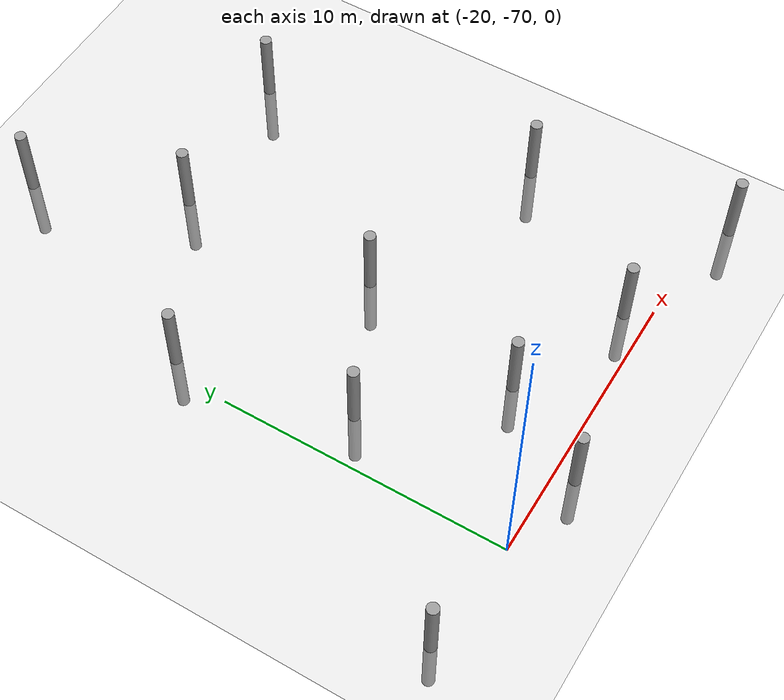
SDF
<sdf version="1.6">
 <world name="default">
  <model name="ground_plane">
   <static>1</static>
   <link name="link">
    <collision name="collision">
     <geometry><plane><normal>0 0 1</normal><size>100 100</size></plane></geometry>
     <surface><friction><ode><mu>100</mu><mu2>50</mu2></ode></friction></surface>
    </collision>
    <visual name="visual">
     <cast_shadows>0</cast_shadows>
     <geometry><plane><normal>0 0 1</normal><size>100 100</size></plane></geometry>
     <material>
      <script><uri>file://media/materials/scripts/gazebo.material</uri><name>Gazebo/Grey</name></script>
     </material>
    </visual>
   </link>
  </model>
  <model name="empty_pillars_12">
   <link name="link">
    <inertial>
     <mass>1</mass>
     <inertia><ixx>0.145833</ixx><ixy>0</ixy><ixz>0</ixz><iyy>0.145833</iyy><iyz>0</iyz><izz>0.125</izz></inertia>
    </inertial>
    <visual name="visual">
     <geometry><cylinder><radius>0.2</radius><length>5</length></cylinder></geometry>
     <material>
      <script><name>Gazebo/Grey</name><uri>file://media/materials/scripts/gazebo.material</uri></script>
      <shader type="vertex"><normal_map>__default__</normal_map></shader>
      <ambient>0.3 0.3 0.3 1</ambient>
      <diffuse>0.7 0.7 0.7 1</diffuse>
      <specular>0.01 0.01 0.01 1</specular>
      <emissive>0 0 0 1</emissive>
     </material>
    </visual>
    <collision name="collision">
     <geometry><cylinder><radius>0.05</radius><length>5</length></cylinder></geometry>
     <surface>
      <friction>
       <ode><mu>1</mu><mu2>1</mu2><fdir1>0 0 0</fdir1><slip1>0</slip1><slip2>0</slip2></ode>
       <torsional>
        <coefficient>1</coefficient>
        <patch_radius>0</patch_radius>
        <surface_radius>0</surface_radius>
        <use_patch_radius>1</use_patch_radius>
        <ode><slip>0</slip></ode>
       </torsional>
      </friction>
      <bounce><restitution_coefficient>0</restitution_coefficient><threshold>1e+06</threshold></bounce>
      <contact>
       <collide_without_contact>0</collide_without_contact>
       <collide_without_contact_bitmask>1</collide_without_contact_bitmask>
       <collide_bitmask>1</collide_bitmask>
       <ode>
        <soft_cfm>0</soft_cfm>
        <soft_erp>0.2</soft_erp>
        <kp>1e+13</kp>
        <kd>1</kd>
        <max_vel>0.01</max_vel>
        <min_depth>0</min_depth>
       </ode>
       <bullet>
        <split_impulse>1</split_impulse>
        <split_impulse_penetration_threshold>-0.01</split_impulse_penetration_threshold>
        <soft_cfm>0</soft_cfm>
        <soft_erp>0.2</soft_erp>
        <kp>1e+13</kp>
        <kd>1</kd>
       </bullet>
      </contact>
     </surface>
    </collision>
   </link>
   <model name="empty_pillar_clone_1">
    <link name="link">
     <inertial>
      <mass>1</mass>
      <inertia><ixx>0.145833</ixx><ixy>0</ixy><ixz>0</ixz><iyy>0.145833</iyy><iyz>0</iyz><izz>0.125</izz></inertia>
     </inertial>
     <visual name="visual">
      <geometry><cylinder><radius>0.2</radius><length>5</length></cylinder></geometry>
      <material>
       <script><name>Gazebo/Grey</name><uri>file://media/materials/scripts/gazebo.material</uri></script>
       <shader type="vertex"><normal_map>__default__</normal_map></shader>
       <ambient>0.3 0.3 0.3 1</ambient>
       <diffuse>0.7 0.7 0.7 1</diffuse>
       <specular>0.01 0.01 0.01 1</specular>
       <emissive>0 0 0 1</emissive>
      </material>
     </visual>
     <collision name="collision">
      <geometry><cylinder><radius>0.05</radius><length>5</length></cylinder></geometry>
      <surface>
       <friction>
        <ode><mu>1</mu><mu2>1</mu2><fdir1>0 0 0</fdir1><slip1>0</slip1><slip2>0</slip2></ode>
        <torsional>
         <coefficient>1</coefficient>
         <patch_radius>0</patch_radius>
         <surface_radius>0</surface_radius>
         <use_patch_radius>1</use_patch_radius>
         <ode><slip>0</slip></ode>
        </torsional>
       </friction>
       <bounce><restitution_coefficient>0</restitution_coefficient><threshold>1e+06</threshold></bounce>
       <contact>
        <collide_without_contact>0</collide_without_contact>
        <collide_without_contact_bitmask>1</collide_without_contact_bitmask>
        <collide_bitmask>1</collide_bitmask>
        <ode>
         <soft_cfm>0</soft_cfm>
         <soft_erp>0.2</soft_erp>
         <kp>1e+13</kp>
         <kd>1</kd>
         <max_vel>0.01</max_vel>
         <min_depth>0</min_depth>
        </ode>
        <bullet>
         <split_impulse>1</split_impulse>
         <split_impulse_penetration_threshold>-0.01</split_impulse_penetration_threshold>
         <soft_cfm>0</soft_cfm>
         <soft_erp>0.2</soft_erp>
         <kp>1e+13</kp>
         <kd>1</kd>
        </bullet>
       </contact>
      </surface>
     </collision>
    </link>
    <static>0</static>
    <pose>8.92248 2.14838 0 0 -0 0</pose>
   </model>
   <model name="empty_pillar_clone_2">
    <link name="link">
     <inertial>
      <mass>1</mass>
      <inertia><ixx>0.145833</ixx><ixy>0</ixy><ixz>0</ixz><iyy>0.145833</iyy><iyz>0</iyz><izz>0.125</izz></inertia>
     </inertial>
     <visual name="visual">
      <geometry><cylinder><radius>0.2</radius><length>5</length></cylinder></geometry>
      <material>
       <script><name>Gazebo/Grey</name><uri>file://media/materials/scripts/gazebo.material</uri></script>
       <shader type="vertex"><normal_map>__default__</normal_map></shader>
       <ambient>0.3 0.3 0.3 1</ambient>
       <diffuse>0.7 0.7 0.7 1</diffuse>
       <specular>0.01 0.01 0.01 1</specular>
       <emissive>0 0 0 1</emissive>
      </material>
     </visual>
     <collision name="collision">
      <geometry><cylinder><radius>0.05</radius><length>5</length></cylinder></geometry>
      <surface>
       <friction>
        <ode><mu>1</mu><mu2>1</mu2><fdir1>0 0 0</fdir1><slip1>0</slip1><slip2>0</slip2></ode>
        <torsional>
         <coefficient>1</coefficient>
         <patch_radius>0</patch_radius>
         <surface_radius>0</surface_radius>
         <use_patch_radius>1</use_patch_radius>
         <ode><slip>0</slip></ode>
        </torsional>
       </friction>
       <bounce><restitution_coefficient>0</restitution_coefficient><threshold>1e+06</threshold></bounce>
       <contact>
        <collide_without_contact>0</collide_without_contact>
        <collide_without_contact_bitmask>1</collide_without_contact_bitmask>
        <collide_bitmask>1</collide_bitmask>
        <ode>
         <soft_cfm>0</soft_cfm>
         <soft_erp>0.2</soft_erp>
         <kp>1e+13</kp>
         <kd>1</kd>
         <max_vel>0.01</max_vel>
         <min_depth>0</min_depth>
        </ode>
        <bullet>
         <split_impulse>1</split_impulse>
         <split_impulse_penetration_threshold>-0.01</split_impulse_penetration_threshold>
         <soft_cfm>0</soft_cfm>
         <soft_erp>0.2</soft_erp>
         <kp>1e+13</kp>
         <kd>1</kd>
        </bullet>
       </contact>
      </surface>
     </collision>
    </link>
    <static>0</static>
    <pose>6.92427 -1.06221 0 0 -0 0</pose>
   </model>
   <model name="empty_pillar_clone_26">
    <link name="link">
     <inertial>
      <mass>1</mass>
      <inertia><ixx>0.145833</ixx><ixy>0</ixy><ixz>0</ixz><iyy>0.145833</iyy><iyz>0</iyz><izz>0.125</izz></inertia>
     </inertial>
     <visual name="visual">
      <geometry><cylinder><radius>0.2</radius><length>5</length></cylinder></geometry>
      <material>
       <script><name>Gazebo/Grey</name><uri>file://media/materials/scripts/gazebo.material</uri></script>
       <shader type="vertex"><normal_map>__default__</normal_map></shader>
       <ambient>0.3 0.3 0.3 1</ambient>
       <diffuse>0.7 0.7 0.7 1</diffuse>
       <specular>0.01 0.01 0.01 1</specular>
       <emissive>0 0 0 1</emissive>
      </material>
     </visual>
     <collision name="collision">
      <geometry><cylinder><radius>0.05</radius><length>5</length></cylinder></geometry>
      <surface>
       <friction>
        <ode><mu>1</mu><mu2>1</mu2><fdir1>0 0 0</fdir1><slip1>0</slip1><slip2>0</slip2></ode>
        <torsional>
         <coefficient>1</coefficient>
         <patch_radius>0</patch_radius>
         <surface_radius>0</surface_radius>
         <use_patch_radius>1</use_patch_radius>
         <ode><slip>0</slip></ode>
        </torsional>
       </friction>
       <bounce><restitution_coefficient>0</restitution_coefficient><threshold>1e+06</threshold></bounce>
       <contact>
        <collide_without_contact>0</collide_without_contact>
        <collide_without_contact_bitmask>1</collide_without_contact_bitmask>
        <collide_bitmask>1</collide_bitmask>
        <ode>
         <soft_cfm>0</soft_cfm>
         <soft_erp>0.2</soft_erp>
         <kp>1e+13</kp>
         <kd>1</kd>
         <max_vel>0.01</max_vel>
         <min_depth>0</min_depth>
        </ode>
        <bullet>
         <split_impulse>1</split_impulse>
         <split_impulse_penetration_threshold>-0.01</split_impulse_penetration_threshold>
         <soft_cfm>0</soft_cfm>
         <soft_erp>0.2</soft_erp>
         <kp>1e+13</kp>
         <kd>1</kd>
        </bullet>
       </contact>
      </surface>
     </collision>
    </link>
    <static>0</static>
    <pose>7.70652 20.1444 0 0 -0 0</pose>
   </model>
   <model name="empty_pillar_clone_27">
    <link name="link">
     <inertial>
      <mass>1</mass>
      <inertia><ixx>0.145833</ixx><ixy>0</ixy><ixz>0</ixz><iyy>0.145833</iyy><iyz>0</iyz><izz>0.125</izz></inertia>
     </inertial>
     <visual name="visual">
      <geometry><cylinder><radius>0.2</radius><length>5</length></cylinder></geometry>
      <material>
       <script><name>Gazebo/Grey</name><uri>file://media/materials/scripts/gazebo.material</uri></script>
       <shader type="vertex"><normal_map>__default__</normal_map></shader>
       <ambient>0.3 0.3 0.3 1</ambient>
       <diffuse>0.7 0.7 0.7 1</diffuse>
       <specular>0.01 0.01 0.01 1</specular>
       <emissive>0 0 0 1</emissive>
      </material>
     </visual>
     <collision name="collision">
      <geometry><cylinder><radius>0.05</radius><length>5</length></cylinder></geometry>
      <surface>
       <friction>
        <ode><mu>1</mu><mu2>1</mu2><fdir1>0 0 0</fdir1><slip1>0</slip1><slip2>0</slip2></ode>
        <torsional>
         <coefficient>1</coefficient>
         <patch_radius>0</patch_radius>
         <surface_radius>0</surface_radius>
         <use_patch_radius>1</use_patch_radius>
         <ode><slip>0</slip></ode>
        </torsional>
       </friction>
       <bounce><restitution_coefficient>0</restitution_coefficient><threshold>1e+06</threshold></bounce>
       <contact>
        <collide_without_contact>0</collide_without_contact>
        <collide_without_contact_bitmask>1</collide_without_contact_bitmask>
        <collide_bitmask>1</collide_bitmask>
        <ode>
         <soft_cfm>0</soft_cfm>
         <soft_erp>0.2</soft_erp>
         <kp>1e+13</kp>
         <kd>1</kd>
         <max_vel>0.01</max_vel>
         <min_depth>0</min_depth>
        </ode>
        <bullet>
         <split_impulse>1</split_impulse>
         <split_impulse_penetration_threshold>-0.01</split_impulse_penetration_threshold>
         <soft_cfm>0</soft_cfm>
         <soft_erp>0.2</soft_erp>
         <kp>1e+13</kp>
         <kd>1</kd>
        </bullet>
       </contact>
      </surface>
     </collision>
    </link>
    <static>0</static>
    <pose>4.32163 11.823 0 0 -0 0</pose>
   </model>
   <model name="empty_pillar_clone_28">
    <link name="link">
     <inertial>
      <mass>1</mass>
      <inertia><ixx>0.145833</ixx><ixy>0</ixy><ixz>0</ixz><iyy>0.145833</iyy><iyz>0</iyz><izz>0.125</izz></inertia>
     </inertial>
     <visual name="visual">
      <geometry><cylinder><radius>0.2</radius><length>5</length></cylinder></geometry>
      <material>
       <script><name>Gazebo/Grey</name><uri>file://media/materials/scripts/gazebo.material</uri></script>
       <shader type="vertex"><normal_map>__default__</normal_map></shader>
       <ambient>0.3 0.3 0.3 1</ambient>
       <diffuse>0.7 0.7 0.7 1</diffuse>
       <specular>0.01 0.01 0.01 1</specular>
       <emissive>0 0 0 1</emissive>
      </material>
     </visual>
     <collision name="collision">
      <geometry><cylinder><radius>0.05</radius><length>5</length></cylinder></geometry>
      <surface>
       <friction>
        <ode><mu>1</mu><mu2>1</mu2><fdir1>0 0 0</fdir1><slip1>0</slip1><slip2>0</slip2></ode>
        <torsional>
         <coefficient>1</coefficient>
         <patch_radius>0</patch_radius>
         <surface_radius>0</surface_radius>
         <use_patch_radius>1</use_patch_radius>
         <ode><slip>0</slip></ode>
        </torsional>
       </friction>
       <bounce><restitution_coefficient>0</restitution_coefficient><threshold>1e+06</threshold></bounce>
       <contact>
        <collide_without_contact>0</collide_without_contact>
        <collide_without_contact_bitmask>1</collide_without_contact_bitmask>
        <collide_bitmask>1</collide_bitmask>
        <ode>
         <soft_cfm>0</soft_cfm>
         <soft_erp>0.2</soft_erp>
         <kp>1e+13</kp>
         <kd>1</kd>
         <max_vel>0.01</max_vel>
         <min_depth>0</min_depth>
        </ode>
        <bullet>
         <split_impulse>1</split_impulse>
         <split_impulse_penetration_threshold>-0.01</split_impulse_penetration_threshold>
         <soft_cfm>0</soft_cfm>
         <soft_erp>0.2</soft_erp>
         <kp>1e+13</kp>
         <kd>1</kd>
        </bullet>
       </contact>
      </surface>
     </collision>
    </link>
    <static>0</static>
    <pose>15.5447 15.5867 0 0 -0 0</pose>
   </model>
   <model name="empty_pillar_clone_29">
    <link name="link">
     <inertial>
      <mass>1</mass>
      <inertia><ixx>0.145833</ixx><ixy>0</ixy><ixz>0</ixz><iyy>0.145833</iyy><iyz>0</iyz><izz>0.125</izz></inertia>
     </inertial>
     <visual name="visual">
      <geometry><cylinder><radius>0.2</radius><length>5</length></cylinder></geometry>
      <material>
       <script><name>Gazebo/Grey</name><uri>file://media/materials/scripts/gazebo.material</uri></script>
       <shader type="vertex"><normal_map>__default__</normal_map></shader>
       <ambient>0.3 0.3 0.3 1</ambient>
       <diffuse>0.7 0.7 0.7 1</diffuse>
       <specular>0.01 0.01 0.01 1</specular>
       <emissive>0 0 0 1</emissive>
      </material>
     </visual>
     <collision name="collision">
      <geometry><cylinder><radius>0.05</radius><length>5</length></cylinder></geometry>
      <surface>
       <friction>
        <ode><mu>1</mu><mu2>1</mu2><fdir1>0 0 0</fdir1><slip1>0</slip1><slip2>0</slip2></ode>
        <torsional>
         <coefficient>1</coefficient>
         <patch_radius>0</patch_radius>
         <surface_radius>0</surface_radius>
         <use_patch_radius>1</use_patch_radius>
         <ode><slip>0</slip></ode>
        </torsional>
       </friction>
       <bounce><restitution_coefficient>0</restitution_coefficient><threshold>1e+06</threshold></bounce>
       <contact>
        <collide_without_contact>0</collide_without_contact>
        <collide_without_contact_bitmask>1</collide_without_contact_bitmask>
        <collide_bitmask>1</collide_bitmask>
        <ode>
         <soft_cfm>0</soft_cfm>
         <soft_erp>0.2</soft_erp>
         <kp>1e+13</kp>
         <kd>1</kd>
         <max_vel>0.01</max_vel>
         <min_depth>0</min_depth>
        </ode>
        <bullet>
         <split_impulse>1</split_impulse>
         <split_impulse_penetration_threshold>-0.01</split_impulse_penetration_threshold>
         <soft_cfm>0</soft_cfm>
         <soft_erp>0.2</soft_erp>
         <kp>1e+13</kp>
         <kd>1</kd>
        </bullet>
       </contact>
      </surface>
     </collision>
    </link>
    <static>0</static>
    <pose>10.08 8.0876 0 0 -0 0</pose>
   </model>
   <model name="empty_pillar_clone_49">
    <link name="link">
     <inertial>
      <mass>1</mass>
      <inertia><ixx>0.145833</ixx><ixy>0</ixy><ixz>0</ixz><iyy>0.145833</iyy><iyz>0</iyz><izz>0.125</izz></inertia>
     </inertial>
     <visual name="visual">
      <geometry><cylinder><radius>0.2</radius><length>5</length></cylinder></geometry>
      <material>
       <script><name>Gazebo/Grey</name><uri>file://media/materials/scripts/gazebo.material</uri></script>
       <shader type="vertex"><normal_map>__default__</normal_map></shader>
       <ambient>0.3 0.3 0.3 1</ambient>
       <diffuse>0.7 0.7 0.7 1</diffuse>
       <specular>0.01 0.01 0.01 1</specular>
       <emissive>0 0 0 1</emissive>
      </material>
     </visual>
     <collision name="collision">
      <geometry><cylinder><radius>0.05</radius><length>5</length></cylinder></geometry>
      <surface>
       <friction>
        <ode><mu>1</mu><mu2>1</mu2><fdir1>0 0 0</fdir1><slip1>0</slip1><slip2>0</slip2></ode>
        <torsional>
         <coefficient>1</coefficient>
         <patch_radius>0</patch_radius>
         <surface_radius>0</surface_radius>
         <use_patch_radius>1</use_patch_radius>
         <ode><slip>0</slip></ode>
        </torsional>
       </friction>
       <bounce><restitution_coefficient>0</restitution_coefficient><threshold>1e+06</threshold></bounce>
       <contact>
        <collide_without_contact>0</collide_without_contact>
        <collide_without_contact_bitmask>1</collide_without_contact_bitmask>
        <collide_bitmask>1</collide_bitmask>
        <ode>
         <soft_cfm>0</soft_cfm>
         <soft_erp>0.2</soft_erp>
         <kp>1e+13</kp>
         <kd>1</kd>
         <max_vel>0.01</max_vel>
         <min_depth>0</min_depth>
        </ode>
        <bullet>
         <split_impulse>1</split_impulse>
         <split_impulse_penetration_threshold>-0.01</split_impulse_penetration_threshold>
         <soft_cfm>0</soft_cfm>
         <soft_erp>0.2</soft_erp>
         <kp>1e+13</kp>
         <kd>1</kd>
        </bullet>
       </contact>
      </surface>
     </collision>
    </link>
    <static>0</static>
    <pose>9.84768 15.1425 0 0 -0 0</pose>
   </model>
   <model name="empty_pillar_clone_55">
    <link name="link">
     <inertial>
      <mass>1</mass>
      <inertia><ixx>0.145833</ixx><ixy>0</ixy><ixz>0</ixz><iyy>0.145833</iyy><iyz>0</iyz><izz>0.125</izz></inertia>
     </inertial>
     <visual name="visual">
      <geometry><cylinder><radius>0.2</radius><length>5</length></cylinder></geometry>
      <material>
       <script><name>Gazebo/Grey</name><uri>file://media/materials/scripts/gazebo.material</uri></script>
       <shader type="vertex"><normal_map>__default__</normal_map></shader>
       <ambient>0.3 0.3 0.3 1</ambient>
       <diffuse>0.7 0.7 0.7 1</diffuse>
       <specular>0.01 0.01 0.01 1</specular>
       <emissive>0 0 0 1</emissive>
      </material>
     </visual>
     <collision name="collision">
      <geometry><cylinder><radius>0.05</radius><length>5</length></cylinder></geometry>
      <surface>
       <friction>
        <ode><mu>1</mu><mu2>1</mu2><fdir1>0 0 0</fdir1><slip1>0</slip1><slip2>0</slip2></ode>
        <torsional>
         <coefficient>1</coefficient>
         <patch_radius>0</patch_radius>
         <surface_radius>0</surface_radius>
         <use_patch_radius>1</use_patch_radius>
         <ode><slip>0</slip></ode>
        </torsional>
       </friction>
       <bounce><restitution_coefficient>0</restitution_coefficient><threshold>1e+06</threshold></bounce>
       <contact>
        <collide_without_contact>0</collide_without_contact>
        <collide_without_contact_bitmask>1</collide_without_contact_bitmask>
        <collide_bitmask>1</collide_bitmask>
        <ode>
         <soft_cfm>0</soft_cfm>
         <soft_erp>0.2</soft_erp>
         <kp>1e+13</kp>
         <kd>1</kd>
         <max_vel>0.01</max_vel>
         <min_depth>0</min_depth>
        </ode>
        <bullet>
         <split_impulse>1</split_impulse>
         <split_impulse_penetration_threshold>-0.01</split_impulse_penetration_threshold>
         <soft_cfm>0</soft_cfm>
         <soft_erp>0.2</soft_erp>
         <kp>1e+13</kp>
         <kd>1</kd>
        </bullet>
       </contact>
      </surface>
     </collision>
    </link>
    <static>0</static>
    <pose>13.2247 0.382706 0 0 -0 0</pose>
   </model>
   <model name="empty_pillar_clone_57">
    <link name="link">
     <inertial>
      <mass>1</mass>
      <inertia><ixx>0.145833</ixx><ixy>0</ixy><ixz>0</ixz><iyy>0.145833</iyy><iyz>0</iyz><izz>0.125</izz></inertia>
     </inertial>
     <visual name="visual">
      <geometry><cylinder><radius>0.2</radius><length>5</length></cylinder></geometry>
      <material>
       <script><name>Gazebo/Grey</name><uri>file://media/materials/scripts/gazebo.material</uri></script>
       <shader type="vertex"><normal_map>__default__</normal_map></shader>
       <ambient>0.3 0.3 0.3 1</ambient>
       <diffuse>0.7 0.7 0.7 1</diffuse>
       <specular>0.01 0.01 0.01 1</specular>
       <emissive>0 0 0 1</emissive>
      </material>
     </visual>
     <collision name="collision">
      <geometry><cylinder><radius>0.05</radius><length>5</length></cylinder></geometry>
      <surface>
       <friction>
        <ode><mu>1</mu><mu2>1</mu2><fdir1>0 0 0</fdir1><slip1>0</slip1><slip2>0</slip2></ode>
        <torsional>
         <coefficient>1</coefficient>
         <patch_radius>0</patch_radius>
         <surface_radius>0</surface_radius>
         <use_patch_radius>1</use_patch_radius>
         <ode><slip>0</slip></ode>
        </torsional>
       </friction>
       <bounce><restitution_coefficient>0</restitution_coefficient><threshold>1e+06</threshold></bounce>
       <contact>
        <collide_without_contact>0</collide_without_contact>
        <collide_without_contact_bitmask>1</collide_without_contact_bitmask>
        <collide_bitmask>1</collide_bitmask>
        <ode>
         <soft_cfm>0</soft_cfm>
         <soft_erp>0.2</soft_erp>
         <kp>1e+13</kp>
         <kd>1</kd>
         <max_vel>0.01</max_vel>
         <min_depth>0</min_depth>
        </ode>
        <bullet>
         <split_impulse>1</split_impulse>
         <split_impulse_penetration_threshold>-0.01</split_impulse_penetration_threshold>
         <soft_cfm>0</soft_cfm>
         <soft_erp>0.2</soft_erp>
         <kp>1e+13</kp>
         <kd>1</kd>
        </bullet>
       </contact>
      </surface>
     </collision>
    </link>
    <static>0</static>
    <pose>5.4355 5.86468 0 0 -0 0</pose>
   </model>
   <model name="empty_pillar_clone_7">
    <link name="link">
     <inertial>
      <mass>1</mass>
      <inertia><ixx>0.145833</ixx><ixy>0</ixy><ixz>0</ixz><iyy>0.145833</iyy><iyz>0</iyz><izz>0.125</izz></inertia>
     </inertial>
     <visual name="visual">
      <geometry><cylinder><radius>0.2</radius><length>5</length></cylinder></geometry>
      <material>
       <script><name>Gazebo/Grey</name><uri>file://media/materials/scripts/gazebo.material</uri></script>
       <shader type="vertex"><normal_map>__default__</normal_map></shader>
       <ambient>0.3 0.3 0.3 1</ambient>
       <diffuse>0.7 0.7 0.7 1</diffuse>
       <specular>0.01 0.01 0.01 1</specular>
       <emissive>0 0 0 1</emissive>
      </material>
     </visual>
     <collision name="collision">
      <geometry><cylinder><radius>0.05</radius><length>5</length></cylinder></geometry>
      <surface>
       <friction>
        <ode><mu>1</mu><mu2>1</mu2><fdir1>0 0 0</fdir1><slip1>0</slip1><slip2>0</slip2></ode>
        <torsional>
         <coefficient>1</coefficient>
         <patch_radius>0</patch_radius>
         <surface_radius>0</surface_radius>
         <use_patch_radius>1</use_patch_radius>
         <ode><slip>0</slip></ode>
        </torsional>
       </friction>
       <bounce><restitution_coefficient>0</restitution_coefficient><threshold>1e+06</threshold></bounce>
       <contact>
        <collide_without_contact>0</collide_without_contact>
        <collide_without_contact_bitmask>1</collide_without_contact_bitmask>
        <collide_bitmask>1</collide_bitmask>
        <ode>
         <soft_cfm>0</soft_cfm>
         <soft_erp>0.2</soft_erp>
         <kp>1e+13</kp>
         <kd>1</kd>
         <max_vel>0.01</max_vel>
         <min_depth>0</min_depth>
        </ode>
        <bullet>
         <split_impulse>1</split_impulse>
         <split_impulse_penetration_threshold>-0.01</split_impulse_penetration_threshold>
         <soft_cfm>0</soft_cfm>
         <soft_erp>0.2</soft_erp>
         <kp>1e+13</kp>
         <kd>1</kd>
        </bullet>
       </contact>
      </surface>
     </collision>
    </link>
    <static>0</static>
    <pose>16.9242 5.74519 0 0 -0 0</pose>
   </model>
   <model name="empty_pillar_clone_9">
    <link name="link">
     <inertial>
      <mass>1</mass>
      <inertia><ixx>0.145833</ixx><ixy>0</ixy><ixz>0</ixz><iyy>0.145833</iyy><iyz>0</iyz><izz>0.125</izz></inertia>
     </inertial>
     <visual name="visual">
      <geometry><cylinder><radius>0.2</radius><length>5</length></cylinder></geometry>
      <material>
       <script><name>Gazebo/Grey</name><uri>file://media/materials/scripts/gazebo.material</uri></script>
       <shader type="vertex"><normal_map>__default__</normal_map></shader>
       <ambient>0.3 0.3 0.3 1</ambient>
       <diffuse>0.7 0.7 0.7 1</diffuse>
       <specular>0.01 0.01 0.01 1</specular>
       <emissive>0 0 0 1</emissive>
      </material>
     </visual>
     <collision name="collision">
      <geometry><cylinder><radius>0.05</radius><length>5</length></cylinder></geometry>
      <surface>
       <friction>
        <ode><mu>1</mu><mu2>1</mu2><fdir1>0 0 0</fdir1><slip1>0</slip1><slip2>0</slip2></ode>
        <torsional>
         <coefficient>1</coefficient>
         <patch_radius>0</patch_radius>
         <surface_radius>0</surface_radius>
         <use_patch_radius>1</use_patch_radius>
         <ode><slip>0</slip></ode>
        </torsional>
       </friction>
       <bounce><restitution_coefficient>0</restitution_coefficient><threshold>1e+06</threshold></bounce>
       <contact>
        <collide_without_contact>0</collide_without_contact>
        <collide_without_contact_bitmask>1</collide_without_contact_bitmask>
        <collide_bitmask>1</collide_bitmask>
        <ode>
         <soft_cfm>0</soft_cfm>
         <soft_erp>0.2</soft_erp>
         <kp>1e+13</kp>
         <kd>1</kd>
         <max_vel>0.01</max_vel>
         <min_depth>0</min_depth>
        </ode>
        <bullet>
         <split_impulse>1</split_impulse>
         <split_impulse_penetration_threshold>-0.01</split_impulse_penetration_threshold>
         <soft_cfm>0</soft_cfm>
         <soft_erp>0.2</soft_erp>
         <kp>1e+13</kp>
         <kd>1</kd>
        </bullet>
       </contact>
      </surface>
     </collision>
    </link>
    <static>0</static>
    <pose>18.1111 -1.13899 0 0 -0 0</pose>
   </model>
   <static>0</static>
   <pose>-23.7837 -69.5726 0 0 -0 0</pose>
  </model>
 </world>
</sdf>
